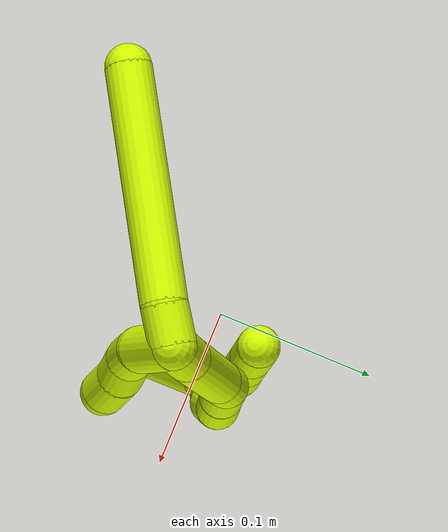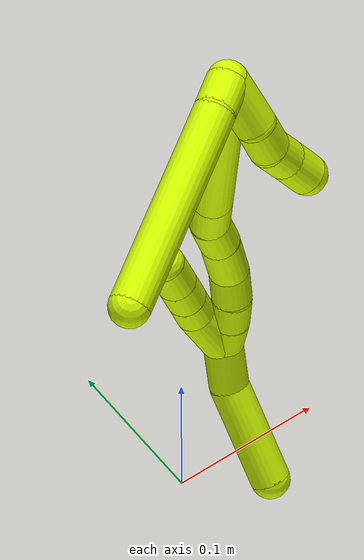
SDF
<sdf version="1.7">
 <world name="default">
  <model name="photoneo_s_sensor">
   <static>1</static>
   <pose>0 0 2 1.57079 1.57079 3.14159</pose>
   <link name="link">
    <inertial><mass>0.1</mass></inertial>
    <sensor name="sensor" type="depth">
     <update_rate>30</update_rate>
     <camera>
      <horizontal_fov>1.22</horizontal_fov>
      <image><width>1920</width><height>1200</height><format>B8G8R8</format></image>
      <clip><near>0.1</near><far>4</far></clip>
      <depth_camera><output>points</output></depth_camera>
     </camera>
     <plugin name="camera_plugin" filename="libgazebo_ros_depth_camera.so">
      <baseline>0.2</baseline>
      <alwaysOn>1</alwaysOn>
      <updateRate>0.0</updateRate>
      <cameraName>camera_ir</cameraName>
      <imageTopicName>/camera/color/image_raw</imageTopicName>
      <cameraInfoTopicName>/camera/color/camera_info</cameraInfoTopicName>
      <depthImageTopicName>/camera/depth/image_raw</depthImageTopicName>
      <depthImageCameraInfoTopicName>/camera/depth/camera_info</depthImageCameraInfoTopicName>
      <pointCloudTopicName>/camera/depth/points</pointCloudTopicName>
      <frameName>fr_optical</frameName>
      <pointCloudCutoff>0.1</pointCloudCutoff>
      <pointCloudCutoffMax>2.0</pointCloudCutoffMax>
      <distortionK1>0</distortionK1>
      <distortionK2>0</distortionK2>
      <distortionK3>0</distortionK3>
      <distortionT1>0</distortionT1>
      <distortionT2>0</distortionT2>
      <CxPrime>0</CxPrime>
      <Cx>0</Cx>
      <Cy>0</Cy>
      <focalLength>0</focalLength>
      <hackBaseline>0</hackBaseline>
     </plugin>
    </sensor>
   </link>
  </model>
  <model name="bin">
   <static>1</static>
   <link name="bottom">
    <collision name="collision-bottom">
     <pose>0 0 -0.01 0 -0 0</pose>
     <geometry><box><size>0.8 0.6 0.02</size></box></geometry>
     <surface>
      <friction><ode><mu>100</mu><mu2>100</mu2></ode></friction>
      <contact><collide_bitmask>65535</collide_bitmask></contact>
     </surface>
    </collision>
   </link>
   <link name="west_wall">
    <collision name="collision-west_wall">
     <pose>-0.41 0 0.1 0 -0 0</pose>
     <geometry><box><size>0.02 0.6 0.2</size></box></geometry>
     <surface>
      <friction><ode><mu>100</mu><mu2>100</mu2></ode></friction>
      <contact><collide_bitmask>65535</collide_bitmask></contact>
     </surface>
    </collision>
   </link>
   <link name="east_wall">
    <collision name="collision-east_wall">
     <pose>0.41 0 0.1 0 -0 0</pose>
     <geometry><box><size>0.02 0.6 0.2</size></box></geometry>
     <surface>
      <friction><ode><mu>100</mu><mu2>100</mu2></ode></friction>
      <contact><collide_bitmask>65535</collide_bitmask></contact>
     </surface>
    </collision>
   </link>
   <link name="south_wall">
    <collision name="collision-south_wall">
     <pose>0 -0.31 0.1 0 -0 0</pose>
     <geometry><box><size>0.8 0.02 0.2</size></box></geometry>
     <surface>
      <friction><ode><mu>100</mu><mu2>100</mu2></ode></friction>
      <contact><collide_bitmask>65535</collide_bitmask></contact>
     </surface>
    </collision>
   </link>
   <link name="north_wall">
    <collision name="collision-north_wall">
     <pose>0 0.31 0.1 0 -0 0</pose>
     <geometry><box><size>0.8 0.02 0.2</size></box></geometry>
     <surface>
      <friction><ode><mu>100</mu><mu2>100</mu2></ode></friction>
      <contact><collide_bitmask>65535</collide_bitmask></contact>
     </surface>
    </collision>
   </link>
  </model>
  <model name="15">
   <static>0</static>
   <link name="15">
    <collision name="collision-cylinder-e_1_2_8">
     <pose>-0.010244 -0.003504 0.001351 1.20285 -1.21945 -0.89397</pose>
     <geometry><cylinder><radius>0.0125</radius><length>0.021822</length></cylinder></geometry>
     <surface>
      <friction><ode><mu>1.16</mu><mu2>1.16</mu2><slip1>0</slip1><slip2>0</slip2></ode></friction>
      <contact><ode><kp>1e+06</kp><kd>1</kd><max_vel>0</max_vel><min_depth>0.001</min_depth></ode></contact>
     </surface>
    </collision>
    <visual name="visual-cylinder-e_1_2_8">
     <pose>-0.010244 -0.003504 0.001351 1.20285 -1.21945 -0.89397</pose>
     <geometry><cylinder><radius>0.0125</radius><length>0.021822</length></cylinder></geometry>
     <material><ambient>0.835294 1 0 1</ambient></material>
    </visual>
    <collision name="collision-cylinder-e_2_8_6">
     <pose>-0.081728 -0.025755 0.00032 1.69714 -1.27147 -1.3945</pose>
     <geometry><cylinder><radius>0.0125</radius><length>0.128178</length></cylinder></geometry>
     <surface>
      <friction><ode><mu>1.16</mu><mu2>1.16</mu2><slip1>0</slip1><slip2>0</slip2></ode></friction>
      <contact><ode><kp>1e+06</kp><kd>1</kd><max_vel>0</max_vel><min_depth>0.001</min_depth></ode></contact>
     </surface>
    </collision>
    <visual name="visual-cylinder-e_2_8_6">
     <pose>-0.081728 -0.025755 0.00032 1.69714 -1.27147 -1.3945</pose>
     <geometry><cylinder><radius>0.0125</radius><length>0.128178</length></cylinder></geometry>
     <material><ambient>0.835294 1 0 1</ambient></material>
    </visual>
    <collision name="collision-cylinder-e_1_2_9">
     <pose>-0.000106 -0.011667 -0.012892 2.40606 -0.006092 -0.015811</pose>
     <geometry><cylinder><radius>0.0125</radius><length>0.034776</length></cylinder></geometry>
     <surface>
      <friction><ode><mu>1.16</mu><mu2>1.16</mu2><slip1>0</slip1><slip2>0</slip2></ode></friction>
      <contact><ode><kp>1e+06</kp><kd>1</kd><max_vel>0</max_vel><min_depth>0.001</min_depth></ode></contact>
     </surface>
    </collision>
    <visual name="visual-cylinder-e_1_2_9">
     <pose>-0.000106 -0.011667 -0.012892 2.40606 -0.006092 -0.015811</pose>
     <geometry><cylinder><radius>0.0125</radius><length>0.034776</length></cylinder></geometry>
     <material><ambient>0.835294 1 0 1</ambient></material>
    </visual>
    <collision name="collision-cylinder-e_2_9_10">
     <pose>0.001014 -0.028295 -0.036103 2.69338 0.106657 0.460075</pose>
     <geometry><cylinder><radius>0.0125</radius><length>0.023029</length></cylinder></geometry>
     <surface>
      <friction><ode><mu>1.16</mu><mu2>1.16</mu2><slip1>0</slip1><slip2>0</slip2></ode></friction>
      <contact><ode><kp>1e+06</kp><kd>1</kd><max_vel>0</max_vel><min_depth>0.001</min_depth></ode></contact>
     </surface>
    </collision>
    <visual name="visual-cylinder-e_2_9_10">
     <pose>0.001014 -0.028295 -0.036103 2.69338 0.106657 0.460075</pose>
     <geometry><cylinder><radius>0.0125</radius><length>0.023029</length></cylinder></geometry>
     <material><ambient>0.835294 1 0 1</ambient></material>
    </visual>
    <collision name="collision-cylinder-e_3_10_11">
     <pose>0.006113 -0.037313 -0.055028 2.70123 0.386627 1.43728</pose>
     <geometry><cylinder><radius>0.0125</radius><length>0.020546</length></cylinder></geometry>
     <surface>
      <friction><ode><mu>1.16</mu><mu2>1.16</mu2><slip1>0</slip1><slip2>0</slip2></ode></friction>
      <contact><ode><kp>1e+06</kp><kd>1</kd><max_vel>0</max_vel><min_depth>0.001</min_depth></ode></contact>
     </surface>
    </collision>
    <visual name="visual-cylinder-e_3_10_11">
     <pose>0.006113 -0.037313 -0.055028 2.70123 0.386627 1.43728</pose>
     <geometry><cylinder><radius>0.0125</radius><length>0.020546</length></cylinder></geometry>
     <material><ambient>0.835294 1 0 1</ambient></material>
    </visual>
    <collision name="collision-cylinder-e_4_11_5">
     <pose>0.013622 -0.047253 -0.071962 2.52636 0.342437 0.996846</pose>
     <geometry><cylinder><radius>0.0125</radius><length>0.021649</length></cylinder></geometry>
     <surface>
      <friction><ode><mu>1.16</mu><mu2>1.16</mu2><slip1>0</slip1><slip2>0</slip2></ode></friction>
      <contact><ode><kp>1e+06</kp><kd>1</kd><max_vel>0</max_vel><min_depth>0.001</min_depth></ode></contact>
     </surface>
    </collision>
    <visual name="visual-cylinder-e_4_11_5">
     <pose>0.013622 -0.047253 -0.071962 2.52636 0.342437 0.996846</pose>
     <geometry><cylinder><radius>0.0125</radius><length>0.021649</length></cylinder></geometry>
     <material><ambient>0.835294 1 0 1</ambient></material>
    </visual>
    <collision name="collision-cylinder-e_1_2_12">
     <pose>2.5e-05 -0.000252 -0.018803 3.12818 0.001307 0.194326</pose>
     <geometry><cylinder><radius>0.0125</radius><length>0.037609</length></cylinder></geometry>
     <surface>
      <friction><ode><mu>1.16</mu><mu2>1.16</mu2><slip1>0</slip1><slip2>0</slip2></ode></friction>
      <contact><ode><kp>1e+06</kp><kd>1</kd><max_vel>0</max_vel><min_depth>0.001</min_depth></ode></contact>
     </surface>
    </collision>
    <visual name="visual-cylinder-e_1_2_12">
     <pose>2.5e-05 -0.000252 -0.018803 3.12818 0.001307 0.194326</pose>
     <geometry><cylinder><radius>0.0125</radius><length>0.037609</length></cylinder></geometry>
     <material><ambient>0.835294 1 0 1</ambient></material>
    </visual>
    <collision name="collision-cylinder-e_2_12_13">
     <pose>-0.002091 -0.003356 -0.09264 3.08983 -0.038819 -1.28679</pose>
     <geometry><cylinder><radius>0.0125</radius><length>0.110299</length></cylinder></geometry>
     <surface>
      <friction><ode><mu>1.16</mu><mu2>1.16</mu2><slip1>0</slip1><slip2>0</slip2></ode></friction>
      <contact><ode><kp>1e+06</kp><kd>1</kd><max_vel>0</max_vel><min_depth>0.001</min_depth></ode></contact>
     </surface>
    </collision>
    <visual name="visual-cylinder-e_2_12_13">
     <pose>-0.002091 -0.003356 -0.09264 3.08983 -0.038819 -1.28679</pose>
     <geometry><cylinder><radius>0.0125</radius><length>0.110299</length></cylinder></geometry>
     <material><ambient>0.835294 1 0 1</ambient></material>
    </visual>
    <collision name="collision-cylinder-e_3_13_14">
     <pose>-0.004797 -0.006937 -0.161719 3.08964 -0.040163 -1.31606</pose>
     <geometry><cylinder><radius>0.0125</radius><length>0.02815</length></cylinder></geometry>
     <surface>
      <friction><ode><mu>1.16</mu><mu2>1.16</mu2><slip1>0</slip1><slip2>0</slip2></ode></friction>
      <contact><ode><kp>1e+06</kp><kd>1</kd><max_vel>0</max_vel><min_depth>0.001</min_depth></ode></contact>
     </surface>
    </collision>
    <visual name="visual-cylinder-e_3_13_14">
     <pose>-0.004797 -0.006937 -0.161719 3.08964 -0.040163 -1.31606</pose>
     <geometry><cylinder><radius>0.0125</radius><length>0.02815</length></cylinder></geometry>
     <material><ambient>0.835294 1 0 1</ambient></material>
    </visual>
    <collision name="collision-cylinder-e_4_14_15">
     <pose>-0.003677 -0.011398 -0.187777 2.84054 0.133174 0.828445</pose>
     <geometry><cylinder><radius>0.0125</radius><length>0.025383</length></cylinder></geometry>
     <surface>
      <friction><ode><mu>1.16</mu><mu2>1.16</mu2><slip1>0</slip1><slip2>0</slip2></ode></friction>
      <contact><ode><kp>1e+06</kp><kd>1</kd><max_vel>0</max_vel><min_depth>0.001</min_depth></ode></contact>
     </surface>
    </collision>
    <visual name="visual-cylinder-e_4_14_15">
     <pose>-0.003677 -0.011398 -0.187777 2.84054 0.133174 0.828445</pose>
     <geometry><cylinder><radius>0.0125</radius><length>0.025383</length></cylinder></geometry>
     <material><ambient>0.835294 1 0 1</ambient></material>
    </visual>
    <collision name="collision-cylinder-e_5_15_16">
     <pose>-0.000909 -0.019472 -0.216837 2.8921 0.061471 0.480873</pose>
     <geometry><cylinder><radius>0.0125</radius><length>0.03525</length></cylinder></geometry>
     <surface>
      <friction><ode><mu>1.16</mu><mu2>1.16</mu2><slip1>0</slip1><slip2>0</slip2></ode></friction>
      <contact><ode><kp>1e+06</kp><kd>1</kd><max_vel>0</max_vel><min_depth>0.001</min_depth></ode></contact>
     </surface>
    </collision>
    <visual name="visual-cylinder-e_5_15_16">
     <pose>-0.000909 -0.019472 -0.216837 2.8921 0.061471 0.480873</pose>
     <geometry><cylinder><radius>0.0125</radius><length>0.03525</length></cylinder></geometry>
     <material><ambient>0.835294 1 0 1</ambient></material>
    </visual>
    <collision name="collision-cylinder-e_6_16_17">
     <pose>-0.002408 -0.028066 -0.243865 2.73896 -0.233626 -1.04368</pose>
     <geometry><cylinder><radius>0.0125</radius><length>0.022303</length></cylinder></geometry>
     <surface>
      <friction><ode><mu>1.16</mu><mu2>1.16</mu2><slip1>0</slip1><slip2>0</slip2></ode></friction>
      <contact><ode><kp>1e+06</kp><kd>1</kd><max_vel>0</max_vel><min_depth>0.001</min_depth></ode></contact>
     </surface>
    </collision>
    <visual name="visual-cylinder-e_6_16_17">
     <pose>-0.002408 -0.028066 -0.243865 2.73896 -0.233626 -1.04368</pose>
     <geometry><cylinder><radius>0.0125</radius><length>0.022303</length></cylinder></geometry>
     <material><ambient>0.835294 1 0 1</ambient></material>
    </visual>
    <collision name="collision-cylinder-e_7_17_18">
     <pose>-0.007752 -0.034516 -0.263374 2.91479 -0.275358 -1.76558</pose>
     <geometry><cylinder><radius>0.0125</radius><length>0.020322</length></cylinder></geometry>
     <surface>
      <friction><ode><mu>1.16</mu><mu2>1.16</mu2><slip1>0</slip1><slip2>0</slip2></ode></friction>
      <contact><ode><kp>1e+06</kp><kd>1</kd><max_vel>0</max_vel><min_depth>0.001</min_depth></ode></contact>
     </surface>
    </collision>
    <visual name="visual-cylinder-e_7_17_18">
     <pose>-0.007752 -0.034516 -0.263374 2.91479 -0.275358 -1.76558</pose>
     <geometry><cylinder><radius>0.0125</radius><length>0.020322</length></cylinder></geometry>
     <material><ambient>0.835294 1 0 1</ambient></material>
    </visual>
    <collision name="collision-cylinder-e_8_18_1">
     <pose>-0.014158 -0.037975 -0.282498 3.01105 -0.359983 -2.45184</pose>
     <geometry><cylinder><radius>0.0125</radius><length>0.020684</length></cylinder></geometry>
     <surface>
      <friction><ode><mu>1.16</mu><mu2>1.16</mu2><slip1>0</slip1><slip2>0</slip2></ode></friction>
      <contact><ode><kp>1e+06</kp><kd>1</kd><max_vel>0</max_vel><min_depth>0.001</min_depth></ode></contact>
     </surface>
    </collision>
    <visual name="visual-cylinder-e_8_18_1">
     <pose>-0.014158 -0.037975 -0.282498 3.01105 -0.359983 -2.45184</pose>
     <geometry><cylinder><radius>0.0125</radius><length>0.020684</length></cylinder></geometry>
     <material><ambient>0.835294 1 0 1</ambient></material>
    </visual>
    <collision name="collision-cylinder-e_1_1_19">
     <pose>-0.02247 -0.046564 -0.305216 2.63217 -0.301209 -1.05543</pose>
     <geometry><cylinder><radius>0.0125</radius><length>0.031476</length></cylinder></geometry>
     <surface>
      <friction><ode><mu>1.16</mu><mu2>1.16</mu2><slip1>0</slip1><slip2>0</slip2></ode></friction>
      <contact><ode><kp>1e+06</kp><kd>1</kd><max_vel>0</max_vel><min_depth>0.001</min_depth></ode></contact>
     </surface>
    </collision>
    <visual name="visual-cylinder-e_1_1_19">
     <pose>-0.02247 -0.046564 -0.305216 2.63217 -0.301209 -1.05543</pose>
     <geometry><cylinder><radius>0.0125</radius><length>0.031476</length></cylinder></geometry>
     <material><ambient>0.835294 1 0 1</ambient></material>
    </visual>
    <collision name="collision-cylinder-e_2_19_4">
     <pose>-0.035512 -0.079175 -0.339893 2.27682 -0.246892 -0.525274</pose>
     <geometry><cylinder><radius>0.0125</radius><length>0.068524</length></cylinder></geometry>
     <surface>
      <friction><ode><mu>1.16</mu><mu2>1.16</mu2><slip1>0</slip1><slip2>0</slip2></ode></friction>
      <contact><ode><kp>1e+06</kp><kd>1</kd><max_vel>0</max_vel><min_depth>0.001</min_depth></ode></contact>
     </surface>
    </collision>
    <visual name="visual-cylinder-e_2_19_4">
     <pose>-0.035512 -0.079175 -0.339893 2.27682 -0.246892 -0.525274</pose>
     <geometry><cylinder><radius>0.0125</radius><length>0.068524</length></cylinder></geometry>
     <material><ambient>0.835294 1 0 1</ambient></material>
    </visual>
    <collision name="collision-cylinder-e_1_1_20">
     <pose>-0.020845 -0.029453 -0.277723 -0.597589 -0.173351 0.053516</pose>
     <geometry><cylinder><radius>0.0125</radius><length>0.035298</length></cylinder></geometry>
     <surface>
      <friction><ode><mu>1.16</mu><mu2>1.16</mu2><slip1>0</slip1><slip2>0</slip2></ode></friction>
      <contact><ode><kp>1e+06</kp><kd>1</kd><max_vel>0</max_vel><min_depth>0.001</min_depth></ode></contact>
     </surface>
    </collision>
    <visual name="visual-cylinder-e_1_1_20">
     <pose>-0.020845 -0.029453 -0.277723 -0.597589 -0.173351 0.053516</pose>
     <geometry><cylinder><radius>0.0125</radius><length>0.035298</length></cylinder></geometry>
     <material><ambient>0.835294 1 0 1</ambient></material>
    </visual>
    <collision name="collision-cylinder-e_2_20_21">
     <pose>-0.025415 -0.016505 -0.253908 -0.323534 -0.151974 0.024848</pose>
     <geometry><cylinder><radius>0.0125</radius><length>0.020154</length></cylinder></geometry>
     <surface>
      <friction><ode><mu>1.16</mu><mu2>1.16</mu2><slip1>0</slip1><slip2>0</slip2></ode></friction>
      <contact><ode><kp>1e+06</kp><kd>1</kd><max_vel>0</max_vel><min_depth>0.001</min_depth></ode></contact>
     </surface>
    </collision>
    <visual name="visual-cylinder-e_2_20_21">
     <pose>-0.025415 -0.016505 -0.253908 -0.323534 -0.151974 0.024848</pose>
     <geometry><cylinder><radius>0.0125</radius><length>0.020154</length></cylinder></geometry>
     <material><ambient>0.835294 1 0 1</ambient></material>
    </visual>
    <collision name="collision-cylinder-e_3_21_22">
     <pose>-0.028412 -0.009915 -0.235067 -0.349367 -0.146123 0.025833</pose>
     <geometry><cylinder><radius>0.0125</radius><length>0.020217</length></cylinder></geometry>
     <surface>
      <friction><ode><mu>1.16</mu><mu2>1.16</mu2><slip1>0</slip1><slip2>0</slip2></ode></friction>
      <contact><ode><kp>1e+06</kp><kd>1</kd><max_vel>0</max_vel><min_depth>0.001</min_depth></ode></contact>
     </surface>
    </collision>
    <visual name="visual-cylinder-e_3_21_22">
     <pose>-0.028412 -0.009915 -0.235067 -0.349367 -0.146123 0.025833</pose>
     <geometry><cylinder><radius>0.0125</radius><length>0.020217</length></cylinder></geometry>
     <material><ambient>0.835294 1 0 1</ambient></material>
    </visual>
    <collision name="collision-cylinder-e_4_22_3">
     <pose>-0.031675 -0.002368 -0.214366 -0.349774 -0.147779 0.026158</pose>
     <geometry><cylinder><radius>0.0125</radius><length>0.024331</length></cylinder></geometry>
     <surface>
      <friction><ode><mu>1.16</mu><mu2>1.16</mu2><slip1>0</slip1><slip2>0</slip2></ode></friction>
      <contact><ode><kp>1e+06</kp><kd>1</kd><max_vel>0</max_vel><min_depth>0.001</min_depth></ode></contact>
     </surface>
    </collision>
    <visual name="visual-cylinder-e_4_22_3">
     <pose>-0.031675 -0.002368 -0.214366 -0.349774 -0.147779 0.026158</pose>
     <geometry><cylinder><radius>0.0125</radius><length>0.024331</length></cylinder></geometry>
     <material><ambient>0.835294 1 0 1</ambient></material>
    </visual>
    <collision name="collision-sphere-3">
     <pose>-0.033466 0.001755 -0.203062 0 -0 0</pose>
     <geometry><sphere><radius>0.0125</radius></sphere></geometry>
     <surface>
      <friction><ode><mu>1.16</mu><mu2>1.16</mu2><slip1>0</slip1><slip2>0</slip2></ode></friction>
      <contact><ode><kp>1e+06</kp><kd>1</kd><max_vel>0</max_vel><min_depth>0.001</min_depth></ode></contact>
     </surface>
    </collision>
    <visual name="visual-sphere-3">
     <pose>-0.033466 0.001755 -0.203062 0 -0 0</pose>
     <geometry><sphere><radius>0.0125</radius></sphere></geometry>
     <material><ambient>0.835294 1 0 1</ambient></material>
    </visual>
    <collision name="collision-sphere-22">
     <pose>-0.029884 -0.006492 -0.225671 0 -0 0</pose>
     <geometry><sphere><radius>0.0125</radius></sphere></geometry>
     <surface>
      <friction><ode><mu>1.16</mu><mu2>1.16</mu2><slip1>0</slip1><slip2>0</slip2></ode></friction>
      <contact><ode><kp>1e+06</kp><kd>1</kd><max_vel>0</max_vel><min_depth>0.001</min_depth></ode></contact>
     </surface>
    </collision>
    <visual name="visual-sphere-22">
     <pose>-0.029884 -0.006492 -0.225671 0 -0 0</pose>
     <geometry><sphere><radius>0.0125</radius></sphere></geometry>
     <material><ambient>0.835294 1 0 1</ambient></material>
    </visual>
    <collision name="collision-sphere-21">
     <pose>-0.02694 -0.013338 -0.244464 0 -0 0</pose>
     <geometry><sphere><radius>0.0125</radius></sphere></geometry>
     <surface>
      <friction><ode><mu>1.16</mu><mu2>1.16</mu2><slip1>0</slip1><slip2>0</slip2></ode></friction>
      <contact><ode><kp>1e+06</kp><kd>1</kd><max_vel>0</max_vel><min_depth>0.001</min_depth></ode></contact>
     </surface>
    </collision>
    <visual name="visual-sphere-21">
     <pose>-0.02694 -0.013338 -0.244464 0 -0 0</pose>
     <geometry><sphere><radius>0.0125</radius></sphere></geometry>
     <material><ambient>0.835294 1 0 1</ambient></material>
    </visual>
    <collision name="collision-sphere-20">
     <pose>-0.023889 -0.019672 -0.263352 0 -0 0</pose>
     <geometry><sphere><radius>0.0125</radius></sphere></geometry>
     <surface>
      <friction><ode><mu>1.16</mu><mu2>1.16</mu2><slip1>0</slip1><slip2>0</slip2></ode></friction>
      <contact><ode><kp>1e+06</kp><kd>1</kd><max_vel>0</max_vel><min_depth>0.001</min_depth></ode></contact>
     </surface>
    </collision>
    <visual name="visual-sphere-20">
     <pose>-0.023889 -0.019672 -0.263352 0 -0 0</pose>
     <geometry><sphere><radius>0.0125</radius></sphere></geometry>
     <material><ambient>0.835294 1 0 1</ambient></material>
    </visual>
    <collision name="collision-sphere-4">
     <pose>-0.043886 -0.104456 -0.361448 0 -0 0</pose>
     <geometry><sphere><radius>0.0125</radius></sphere></geometry>
     <surface>
      <friction><ode><mu>1.16</mu><mu2>1.16</mu2><slip1>0</slip1><slip2>0</slip2></ode></friction>
      <contact><ode><kp>1e+06</kp><kd>1</kd><max_vel>0</max_vel><min_depth>0.001</min_depth></ode></contact>
     </surface>
    </collision>
    <visual name="visual-sphere-4">
     <pose>-0.043886 -0.104456 -0.361448 0 -0 0</pose>
     <geometry><sphere><radius>0.0125</radius></sphere></geometry>
     <material><ambient>0.835294 1 0 1</ambient></material>
    </visual>
    <collision name="collision-sphere-11">
     <pose>0.009987 -0.041369 -0.063635 0 -0 0</pose>
     <geometry><sphere><radius>0.0125</radius></sphere></geometry>
     <surface>
      <friction><ode><mu>1.16</mu><mu2>1.16</mu2><slip1>0</slip1><slip2>0</slip2></ode></friction>
      <contact><ode><kp>1e+06</kp><kd>1</kd><max_vel>0</max_vel><min_depth>0.001</min_depth></ode></contact>
     </surface>
    </collision>
    <visual name="visual-sphere-11">
     <pose>0.009987 -0.041369 -0.063635 0 -0 0</pose>
     <geometry><sphere><radius>0.0125</radius></sphere></geometry>
     <material><ambient>0.835294 1 0 1</ambient></material>
    </visual>
    <collision name="collision-sphere-10">
     <pose>0.00224 -0.033257 -0.046422 0 -0 0</pose>
     <geometry><sphere><radius>0.0125</radius></sphere></geometry>
     <surface>
      <friction><ode><mu>1.16</mu><mu2>1.16</mu2><slip1>0</slip1><slip2>0</slip2></ode></friction>
      <contact><ode><kp>1e+06</kp><kd>1</kd><max_vel>0</max_vel><min_depth>0.001</min_depth></ode></contact>
     </surface>
    </collision>
    <visual name="visual-sphere-10">
     <pose>0.00224 -0.033257 -0.046422 0 -0 0</pose>
     <geometry><sphere><radius>0.0125</radius></sphere></geometry>
     <material><ambient>0.835294 1 0 1</ambient></material>
    </visual>
    <collision name="collision-sphere-6">
     <pose>-0.142968 -0.044503 -0.002061 0 -0 0</pose>
     <geometry><sphere><radius>0.0125</radius></sphere></geometry>
     <surface>
      <friction><ode><mu>1.16</mu><mu2>1.16</mu2><slip1>0</slip1><slip2>0</slip2></ode></friction>
      <contact><ode><kp>1e+06</kp><kd>1</kd><max_vel>0</max_vel><min_depth>0.001</min_depth></ode></contact>
     </surface>
    </collision>
    <visual name="visual-sphere-6">
     <pose>-0.142968 -0.044503 -0.002061 0 -0 0</pose>
     <geometry><sphere><radius>0.0125</radius></sphere></geometry>
     <material><ambient>0.835294 1 0 1</ambient></material>
    </visual>
    <collision name="collision-sphere-9">
     <pose>-0.000212 -0.023334 -0.025785 0 -0 0</pose>
     <geometry><sphere><radius>0.0125</radius></sphere></geometry>
     <surface>
      <friction><ode><mu>1.16</mu><mu2>1.16</mu2><slip1>0</slip1><slip2>0</slip2></ode></friction>
      <contact><ode><kp>1e+06</kp><kd>1</kd><max_vel>0</max_vel><min_depth>0.001</min_depth></ode></contact>
     </surface>
    </collision>
    <visual name="visual-sphere-9">
     <pose>-0.000212 -0.023334 -0.025785 0 -0 0</pose>
     <geometry><sphere><radius>0.0125</radius></sphere></geometry>
     <material><ambient>0.835294 1 0 1</ambient></material>
    </visual>
    <collision name="collision-sphere-2">
     <geometry><sphere><radius>0.0125</radius></sphere></geometry>
     <surface>
      <friction><ode><mu>1.16</mu><mu2>1.16</mu2><slip1>0</slip1><slip2>0</slip2></ode></friction>
      <contact><ode><kp>1e+06</kp><kd>1</kd><max_vel>0</max_vel><min_depth>0.001</min_depth></ode></contact>
     </surface>
    </collision>
    <visual name="visual-sphere-2">
     <geometry><sphere><radius>0.0125</radius></sphere></geometry>
     <material><ambient>0.835294 1 0 1</ambient></material>
    </visual>
    <collision name="collision-sphere-19">
     <pose>-0.027139 -0.053894 -0.318337 0 -0 0</pose>
     <geometry><sphere><radius>0.0125</radius></sphere></geometry>
     <surface>
      <friction><ode><mu>1.16</mu><mu2>1.16</mu2><slip1>0</slip1><slip2>0</slip2></ode></friction>
      <contact><ode><kp>1e+06</kp><kd>1</kd><max_vel>0</max_vel><min_depth>0.001</min_depth></ode></contact>
     </surface>
    </collision>
    <visual name="visual-sphere-19">
     <pose>-0.027139 -0.053894 -0.318337 0 -0 0</pose>
     <geometry><sphere><radius>0.0125</radius></sphere></geometry>
     <material><ambient>0.835294 1 0 1</ambient></material>
    </visual>
    <collision name="collision-sphere-8">
     <pose>-0.020489 -0.007007 0.002701 0 -0 0</pose>
     <geometry><sphere><radius>0.0125</radius></sphere></geometry>
     <surface>
      <friction><ode><mu>1.16</mu><mu2>1.16</mu2><slip1>0</slip1><slip2>0</slip2></ode></friction>
      <contact><ode><kp>1e+06</kp><kd>1</kd><max_vel>0</max_vel><min_depth>0.001</min_depth></ode></contact>
     </surface>
    </collision>
    <visual name="visual-sphere-8">
     <pose>-0.020489 -0.007007 0.002701 0 -0 0</pose>
     <geometry><sphere><radius>0.0125</radius></sphere></geometry>
     <material><ambient>0.835294 1 0 1</ambient></material>
    </visual>
    <collision name="collision-sphere-5">
     <pose>0.017256 -0.053138 -0.080288 0 -0 0</pose>
     <geometry><sphere><radius>0.0125</radius></sphere></geometry>
     <surface>
      <friction><ode><mu>1.16</mu><mu2>1.16</mu2><slip1>0</slip1><slip2>0</slip2></ode></friction>
      <contact><ode><kp>1e+06</kp><kd>1</kd><max_vel>0</max_vel><min_depth>0.001</min_depth></ode></contact>
     </surface>
    </collision>
    <visual name="visual-sphere-5">
     <pose>0.017256 -0.053138 -0.080288 0 -0 0</pose>
     <geometry><sphere><radius>0.0125</radius></sphere></geometry>
     <material><ambient>0.835294 1 0 1</ambient></material>
    </visual>
    <collision name="collision-sphere-12">
     <pose>4.9e-05 -0.000504 -0.037606 0 -0 0</pose>
     <geometry><sphere><radius>0.0125</radius></sphere></geometry>
     <surface>
      <friction><ode><mu>1.16</mu><mu2>1.16</mu2><slip1>0</slip1><slip2>0</slip2></ode></friction>
      <contact><ode><kp>1e+06</kp><kd>1</kd><max_vel>0</max_vel><min_depth>0.001</min_depth></ode></contact>
     </surface>
    </collision>
    <visual name="visual-sphere-12">
     <pose>4.9e-05 -0.000504 -0.037606 0 -0 0</pose>
     <geometry><sphere><radius>0.0125</radius></sphere></geometry>
     <material><ambient>0.835294 1 0 1</ambient></material>
    </visual>
    <collision name="collision-sphere-13">
     <pose>-0.004231 -0.006207 -0.147674 0 -0 0</pose>
     <geometry><sphere><radius>0.0125</radius></sphere></geometry>
     <surface>
      <friction><ode><mu>1.16</mu><mu2>1.16</mu2><slip1>0</slip1><slip2>0</slip2></ode></friction>
      <contact><ode><kp>1e+06</kp><kd>1</kd><max_vel>0</max_vel><min_depth>0.001</min_depth></ode></contact>
     </surface>
    </collision>
    <visual name="visual-sphere-13">
     <pose>-0.004231 -0.006207 -0.147674 0 -0 0</pose>
     <geometry><sphere><radius>0.0125</radius></sphere></geometry>
     <material><ambient>0.835294 1 0 1</ambient></material>
    </visual>
    <collision name="collision-sphere-14">
     <pose>-0.005362 -0.007668 -0.175764 0 -0 0</pose>
     <geometry><sphere><radius>0.0125</radius></sphere></geometry>
     <surface>
      <friction><ode><mu>1.16</mu><mu2>1.16</mu2><slip1>0</slip1><slip2>0</slip2></ode></friction>
      <contact><ode><kp>1e+06</kp><kd>1</kd><max_vel>0</max_vel><min_depth>0.001</min_depth></ode></contact>
     </surface>
    </collision>
    <visual name="visual-sphere-14">
     <pose>-0.005362 -0.007668 -0.175764 0 -0 0</pose>
     <geometry><sphere><radius>0.0125</radius></sphere></geometry>
     <material><ambient>0.835294 1 0 1</ambient></material>
    </visual>
    <collision name="collision-sphere-15">
     <pose>-0.001991 -0.015128 -0.19979 0 -0 0</pose>
     <geometry><sphere><radius>0.0125</radius></sphere></geometry>
     <surface>
      <friction><ode><mu>1.16</mu><mu2>1.16</mu2><slip1>0</slip1><slip2>0</slip2></ode></friction>
      <contact><ode><kp>1e+06</kp><kd>1</kd><max_vel>0</max_vel><min_depth>0.001</min_depth></ode></contact>
     </surface>
    </collision>
    <visual name="visual-sphere-15">
     <pose>-0.001991 -0.015128 -0.19979 0 -0 0</pose>
     <geometry><sphere><radius>0.0125</radius></sphere></geometry>
     <material><ambient>0.835294 1 0 1</ambient></material>
    </visual>
    <collision name="collision-sphere-16">
     <pose>0.000174 -0.023815 -0.233884 0 -0 0</pose>
     <geometry><sphere><radius>0.0125</radius></sphere></geometry>
     <surface>
      <friction><ode><mu>1.16</mu><mu2>1.16</mu2><slip1>0</slip1><slip2>0</slip2></ode></friction>
      <contact><ode><kp>1e+06</kp><kd>1</kd><max_vel>0</max_vel><min_depth>0.001</min_depth></ode></contact>
     </surface>
    </collision>
    <visual name="visual-sphere-16">
     <pose>0.000174 -0.023815 -0.233884 0 -0 0</pose>
     <geometry><sphere><radius>0.0125</radius></sphere></geometry>
     <material><ambient>0.835294 1 0 1</ambient></material>
    </visual>
    <collision name="collision-sphere-17">
     <pose>-0.004989 -0.032317 -0.253846 0 -0 0</pose>
     <geometry><sphere><radius>0.0125</radius></sphere></geometry>
     <surface>
      <friction><ode><mu>1.16</mu><mu2>1.16</mu2><slip1>0</slip1><slip2>0</slip2></ode></friction>
      <contact><ode><kp>1e+06</kp><kd>1</kd><max_vel>0</max_vel><min_depth>0.001</min_depth></ode></contact>
     </surface>
    </collision>
    <visual name="visual-sphere-17">
     <pose>-0.004989 -0.032317 -0.253846 0 -0 0</pose>
     <geometry><sphere><radius>0.0125</radius></sphere></geometry>
     <material><ambient>0.835294 1 0 1</ambient></material>
    </visual>
    <collision name="collision-sphere-18">
     <pose>-0.010515 -0.036715 -0.272902 0 -0 0</pose>
     <geometry><sphere><radius>0.0125</radius></sphere></geometry>
     <surface>
      <friction><ode><mu>1.16</mu><mu2>1.16</mu2><slip1>0</slip1><slip2>0</slip2></ode></friction>
      <contact><ode><kp>1e+06</kp><kd>1</kd><max_vel>0</max_vel><min_depth>0.001</min_depth></ode></contact>
     </surface>
    </collision>
    <visual name="visual-sphere-18">
     <pose>-0.010515 -0.036715 -0.272902 0 -0 0</pose>
     <geometry><sphere><radius>0.0125</radius></sphere></geometry>
     <material><ambient>0.835294 1 0 1</ambient></material>
    </visual>
    <collision name="collision-sphere-1">
     <pose>-0.017801 -0.039235 -0.292095 0 -0 0</pose>
     <geometry><sphere><radius>0.0125</radius></sphere></geometry>
     <surface>
      <friction><ode><mu>1.16</mu><mu2>1.16</mu2><slip1>0</slip1><slip2>0</slip2></ode></friction>
      <contact><ode><kp>1e+06</kp><kd>1</kd><max_vel>0</max_vel><min_depth>0.001</min_depth></ode></contact>
     </surface>
    </collision>
    <visual name="visual-sphere-1">
     <pose>-0.017801 -0.039235 -0.292095 0 -0 0</pose>
     <geometry><sphere><radius>0.0125</radius></sphere></geometry>
     <material><ambient>0.835294 1 0 1</ambient></material>
    </visual>
    <inertial>
     <pose>-0.022649 -0.024546 -0.141608 0 -0 0</pose>
     <mass>0.75</mass>
     <inertia>
      <ixx>-9.5e-05</ixx>
      <ixy>0</ixy>
      <ixz>0</ixz>
      <iyy>-8.1e-05</iyy>
      <iyz>0</iyz>
      <izz>0.000248</izz>
     </inertia>
    </inertial>
   </link>
   <pose>0.020959 -0.016633 0.389224 0.216174 -0.155881 0.25666</pose>
  </model>
 </world>
</sdf>
